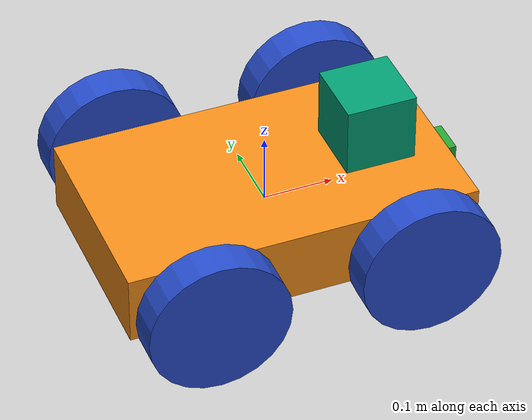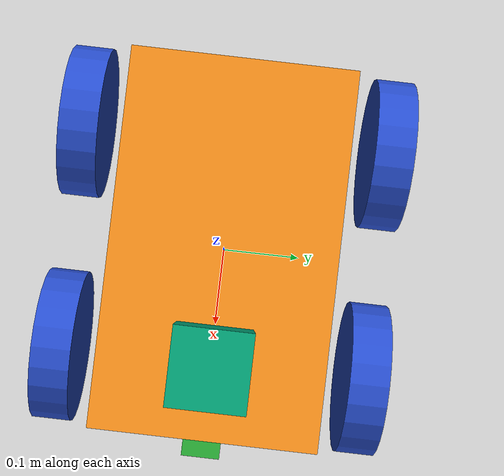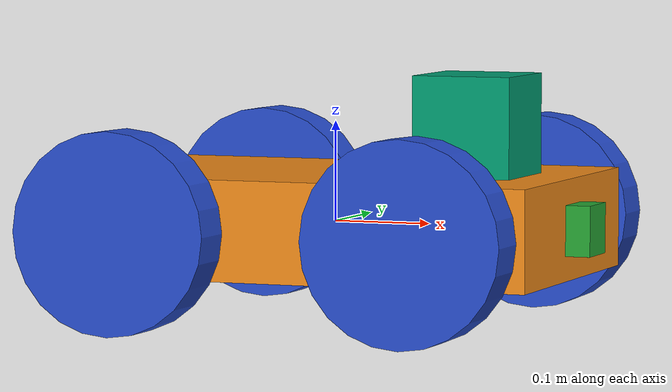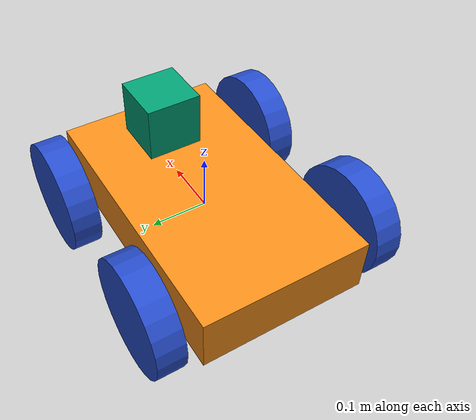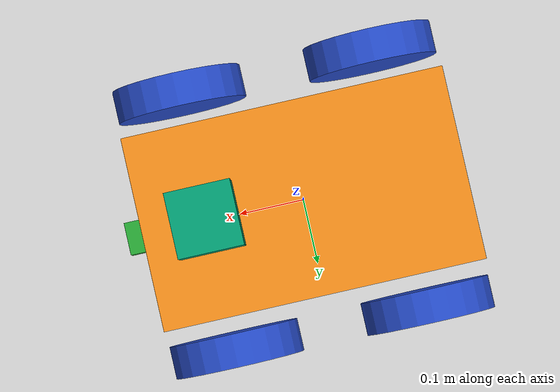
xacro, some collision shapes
<?xml version="1.0" ?>
<robot name="ss" xmlns:xacro="http://www.ros.org/wiki/xacro">

  <xacro:property name="cameraSize" value="0.05"/>
  <xacro:property name="cameraMass" value="0.1"/>

  <xacro:property name="wheel_kp" value="1000000.0" />
  <xacro:property name="wheel_kd" value="100.0" />
  <xacro:property name="wheel_mu1" value="1" />
  <xacro:property name="wheel_mu2" value="1" />
  <xacro:property name="wheel_slip1" value="0.5" />
  <xacro:property name="wheel_slip2" value="0" />

  <xacro:include filename="$(find four_wd_description)/urdf/materials.xacro" />
  <xacro:include filename="$(find four_wd_description)/urdf/ss_test.gazebo" />
  <xacro:include filename="$(find four_wd_description)/urdf/macros.xacro" />

  <link name="base_link">
    <!-- pose and inertial -->
    <pose>0 0 0.1 0 0 0</pose>
    <inertial>
      <mass value="10"/>
      <origin rpy="0 0 0" xyz="0 0 0.1"/>
      <inertia ixx="0.0395416666667" ixy="0" ixz="0" iyy="0.106208333333" iyz="0" izz="0.106208333333"/>
    </inertial>
    <!-- body -->
    <collision name="collision_base">
      <geometry>
        <box size="0.5 0.3 0.1"/>
      </geometry>
    </collision>
    <visual>
      <origin rpy="0 0 0" xyz="0 0 0"/>
      <geometry>
        <box size="0.5 0.3 0.1"/>
      </geometry>
      <material name="orange"/>
    </visual>
  </link>

  <!-- Camera -->
  <link name="camera">
    <collision>
      <origin xyz="0 0 0" rpy="0 0 0"/>
      <geometry>
        <box size="${cameraSize} ${cameraSize} ${cameraSize}"/>
      </geometry>
    </collision>

    <visual>
      <origin xyz="0 0 0" rpy="0 0 0"/>
      <geometry>
        <box size="${cameraSize} ${cameraSize} ${cameraSize}"/>
      </geometry>
      <material name="green"/>
    </visual>

    <inertial>
      <mass value="${cameraMass}" />
      <origin xyz="0 0 0" rpy="0 0 0"/>
      <box_inertia m="${cameraMass}" x="${cameraSize}" y="${cameraSize}" z="${cameraSize}" />
      <inertia ixx="1e-6" ixy="0" ixz="0" iyy="1e-6" iyz="0" izz="1e-6" />
    </inertial>
  </link>

  <joint name="camera_joint" type="fixed">
    <axis xyz="0 1 0" />
    <origin xyz=".25 0 0" rpy="0 0 0"/>
    <parent link="base_link"/>
    <child link="camera"/>
  </joint>

  <!-- Hokuyo Laser -->
  <joint name="hokuyo_joint" type="fixed">
    <axis xyz="0 1 0" />
    <origin xyz=".15 0 .1" rpy="0 0 0"/>
    <parent link="base_link"/>
    <child link="ss/hokuyo"/>
  </joint>

  <link name="ss/hokuyo">
    <collision>
      <origin xyz="0 0 0" rpy="0 0 0"/>
      <geometry>
    <box size="0.1 0.1 0.1"/>
      </geometry>
    </collision>

    <visual>
      <origin xyz="0 0 0" rpy="0 0 0"/>
      <geometry>
        <mesh filename="package://mybot_description/meshes/hokuyo.dae"/>
      </geometry>
    </visual>

    <inertial>
      <mass value="1e-5" />
      <origin xyz="0 0 0" rpy="0 0 0"/>
      <inertia ixx="1e-6" ixy="0" ixz="0" iyy="1e-6" iyz="0" izz="1e-6" />
    </inertial>
  </link>

  <!-- Front left wheel -->
  <link name="front_left_wheel">
    <!--origin xyz="0.1 0.13 0.1" rpy="0 1.5707 1.5707"/-->
    <collision name="front_left_wheel_collision">
      <origin xyz="0.0 0.0 0" rpy="0 1.5707 1.5707"/>
      <geometry>
        <cylinder radius="0.1" length="0.05"/>
      </geometry>
        <surface>
        <friction>
          <fdir1>1 0 0</fdir1>
          <kp>${wheel_kp}</kp> <!-- kp and kd for rubber -->
          <kd>${wheel_kd}</kd>
          <mu>${wheel_mu1}</mu>
          <mu2>${wheel_mu2}</mu2>
          <slip1>${wheel_slip1}</slip1>
          <slip2>${wheel_slip2}</slip2>
        </friction>
      </surface>
    </collision>
    <visual name="front_left_wheel_visual">
      <origin xyz="0 0 0" rpy="0 1.5707 1.5707"/>
      <geometry>
        <cylinder radius="0.1" length="0.05"/>
      </geometry>
    </visual>
    <inertial>
      <origin xyz="0 0 0" rpy="0 1.5707 1.5707"/>
      <mass value="5"/>
      <inertia
        ixx=".1" ixy="0.0" ixz="0.0"
        iyy=".1" iyz="0.0"
        izz=".1"/>
    </inertial>
  </link>

  <joint type="continuous" name="front_joint_left_wheel">
    <origin xyz="0.15 -0.20 0" rpy="0 0 0"/>
    <!--origin xyz="0.1 0.13 0" rpy="0 1.5707 1.5707"/-->
    <child link="front_left_wheel"/>
    <parent link="base_link"/>
    <axis xyz="0 1 0" rpy="0 0 0"/>
    <limit effort="10000" velocity="1000"/>
    <joint_properties damping="1.0" friction="1.0"/>
  </joint>

  <!-- Front right wheel -->
  <link name="front_right_wheel">
    <!--origin xyz="0.1 0.13 0.1" rpy="0 1.5707 1.5707"/-->
    <collision name="front_right_wheel_collision">
      <origin xyz="0.0 0.0 0" rpy="0 1.5707 1.5707"/>
      <geometry>
        <cylinder radius="0.1" length="0.05"/>
      </geometry>
        <surface>
        <friction>
          <fdir1>1 0 0</fdir1>
          <kp>${wheel_kp}</kp> <!-- kp and kd for rubber -->
          <kd>${wheel_kd}</kd>
          <mu>${wheel_mu1}</mu>
          <mu2>${wheel_mu2}</mu2>
          <slip1>${wheel_slip1}</slip1>
          <slip2>${wheel_slip2}</slip2>
        </friction>
      </surface>
    </collision>
    <visual name="front_right_wheel_visual">
      <origin xyz="0 0 0" rpy="0 1.5707 1.5707"/>
      <geometry>
        <cylinder radius="0.1" length="0.05"/>
      </geometry>
    </visual>
    <inertial>
      <origin xyz="0 0 0" rpy="0 1.5707 1.5707"/>
      <mass value="5"/>
      <inertia
        ixx=".1" ixy="0.0" ixz="0.0"
        iyy=".1" iyz="0.0"
        izz=".1"/>
    </inertial>
  </link>

  <joint type="continuous" name="front_joint_right_wheel">
    <origin xyz="0.15 0.20 0" rpy="0 0 0"/>
    <!--origin xyz="0.1 0.13 0" rpy="0 1.5707 1.5707"/-->
    <child link="front_right_wheel"/>
    <parent link="base_link"/>
    <axis xyz="0 1 0" rpy="0 0 0"/>
    <limit effort="10000" velocity="1000"/>
    <joint_properties damping="1.0" friction="1.0"/>
  </joint>

  <!-- rear right wheel -->
  <link name="rear_right_wheel">
    <!--origin xyz="0.1 0.13 0.1" rpy="0 1.5707 1.5707"/-->
    <collision name="rear_right_wheel_collision">
      <origin xyz="0.0 0.0 0" rpy="0 1.5707 1.5707"/>
      <geometry>
        <cylinder radius="0.1" length="0.05"/>
      </geometry>
        <surface>
        <friction>
          <fdir1>1 0 0</fdir1>
          <kp>${wheel_kp}</kp> <!-- kp and kd for rubber -->
          <kd>${wheel_kd}</kd>
          <mu>${wheel_mu1}</mu>
          <mu2>${wheel_mu2}</mu2>
          <slip1>${wheel_slip1}</slip1>
          <slip2>${wheel_slip2}</slip2>
        </friction>
      </surface>
    </collision>
    <visual name="rear_right_wheel_visual">
      <origin xyz="0 0 0" rpy="0 1.5707 1.5707"/>
      <geometry>
        <cylinder radius="0.1" length="0.05"/>
      </geometry>
    </visual>
    <inertial>
      <origin xyz="0 0 0" rpy="0 1.5707 1.5707"/>
      <mass value="5"/>
      <inertia
        ixx=".1" ixy="0.0" ixz="0.0"
        iyy=".1" iyz="0.0"
        izz=".1"/>
    </inertial>
  </link>

  <joint type="continuous" name="rear_joint_right_wheel">
    <origin xyz="-0.15 0.20 0" rpy="0 0 0"/>
    <!--origin xyz="0.1 0.13 0" rpy="0 1.5707 1.5707"/-->
    <child link="rear_right_wheel"/>
    <parent link="base_link"/>
    <axis xyz="0 1 0" rpy="0 0 0"/>
    <limit effort="10000" velocity="1000"/>
    <joint_properties damping="1.0" friction="1.0"/>
  </joint>

  <!-- rear left wheel -->
  <link name="rear_left_wheel">
    <!--origin xyz="0.1 0.13 0.1" rpy="0 1.5707 1.5707"/-->
    <collision name="rear_left_wheel_collision">
      <origin xyz="0.0 0.0 0" rpy="0 1.5707 1.5707"/>
      <geometry>
        <cylinder radius="0.1" length="0.05"/>
      </geometry>
        <surface>
        <friction>
          <fdir1>1 0 0</fdir1>
          <kp>${wheel_kp}</kp> <!-- kp and kd for rubber -->
          <kd>${wheel_kd}</kd>
          <mu>${wheel_mu1}</mu>
          <mu2>${wheel_mu2}</mu2>
          <slip1>${wheel_slip1}</slip1>
          <slip2>${wheel_slip2}</slip2>
        </friction>
      </surface>
    </collision>
    <visual name="rear_left_wheel_visual">
      <origin xyz="0 0 0" rpy="0 1.5707 1.5707"/>
      <geometry>
        <cylinder radius="0.1" length="0.05"/>
      </geometry>
    </visual>
    <inertial>
      <origin xyz="0 0 0" rpy="0 1.5707 1.5707"/>
      <mass value="5"/>
      <inertia
        ixx=".1" ixy="0.0" ixz="0.0"
        iyy=".1" iyz="0.0"
        izz=".1"/>
    </inertial>
  </link>

  <joint type="continuous" name="rear_joint_left_wheel">
    <origin xyz="-0.15 -0.20 0" rpy="0 0 0"/>
    <!--origin xyz="0.1 0.13 0" rpy="0 1.5707 1.5707"/-->
    <child link="rear_left_wheel"/>
    <parent link="base_link"/>
    <axis xyz="0 1 0" rpy="0 0 0"/>
    <limit effort="10000" velocity="1000"/>
    <joint_properties damping="1.0" friction="1.0"/>
  </joint>

</robot>
